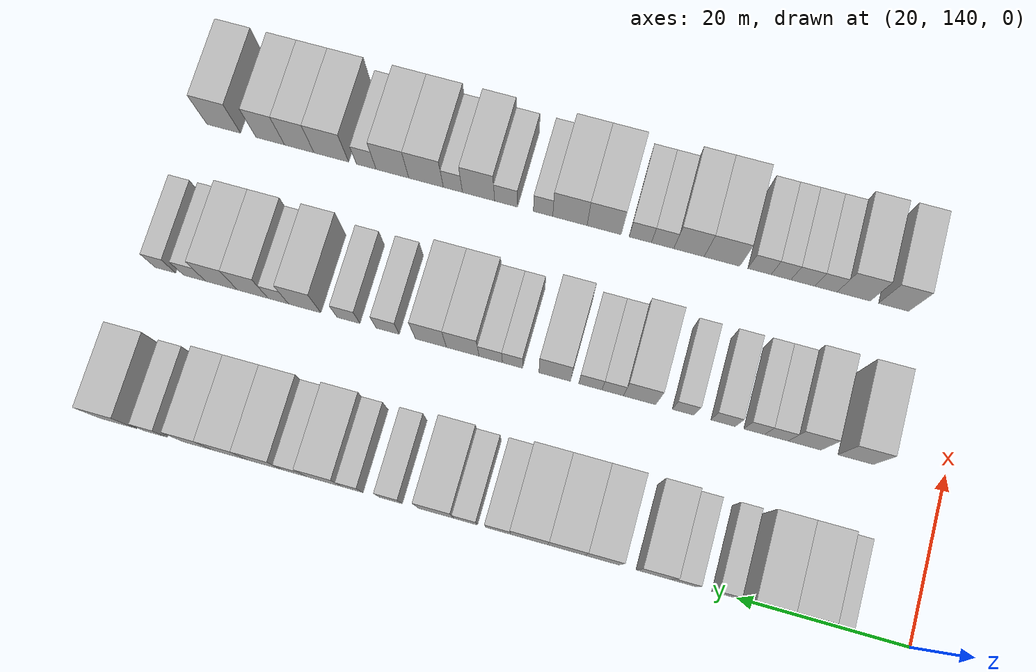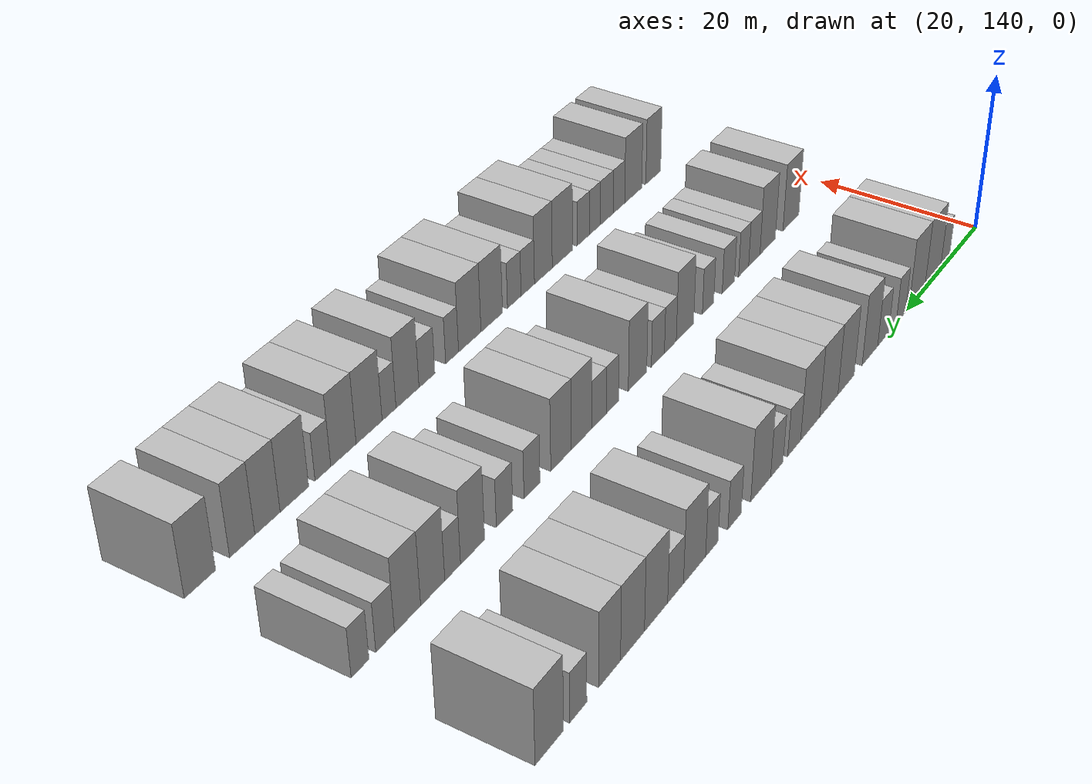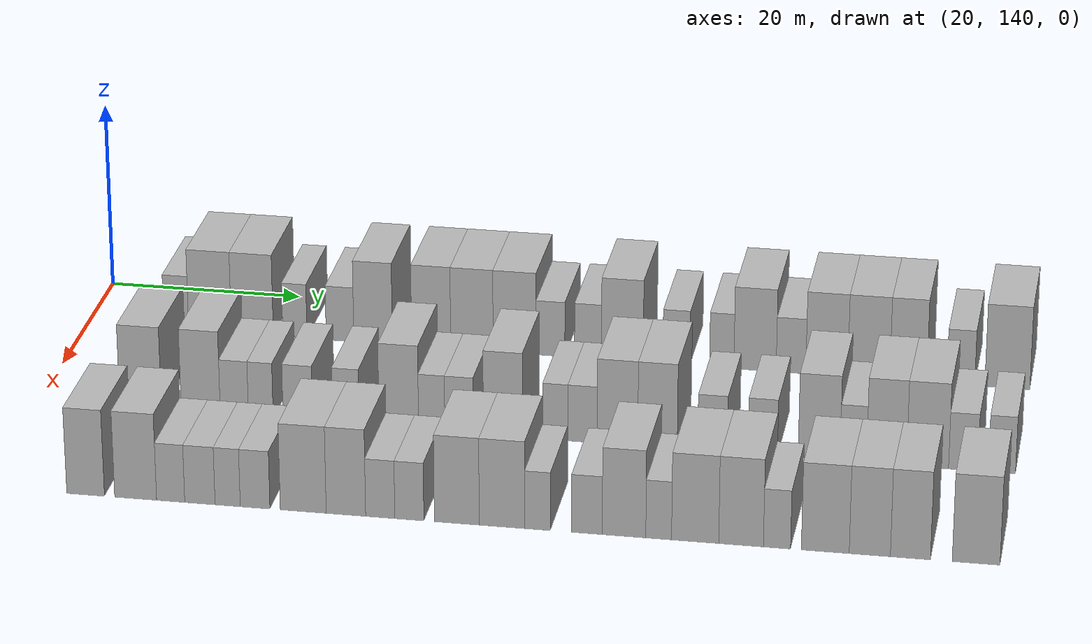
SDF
<sdf version="1.6">
 <world name="default">
  <model name="building_91">
   <static>1</static>
   <pose>25.0000 149.2696 0 0.000000 0.000000 0.000000</pose>
   <link name="link">
    <pose>0 0 3.00 0 0 0</pose>
    <collision name="collision"><geometry><box><size>10.0000 2.5882 6.0000</size></box></geometry></collision>
    <visual name="visual">
     <cast_shadows>0</cast_shadows>
     <geometry><box><size>10.0000 2.5882 6.0000</size></box></geometry>
     <material>
      <script>
       <uri>model://HANNAS_wall/materials/scripts</uri>
       <uri>model://HANNAS_wall/materials/textures</uri>
       <name>vrc/HANNAS_wall</name>
      </script>
     </material>
    </visual>
   </link>
  </model>
  <model name="building_92">
   <static>1</static>
   <pose>25.0000 152.8107 0 0.000000 0.000000 0.000000</pose>
   <link name="link">
    <pose>0 0 4.50 0 0 0</pose>
    <collision name="collision"><geometry><box><size>10.0000 4.4940 9.0000</size></box></geometry></collision>
    <visual name="visual">
     <cast_shadows>0</cast_shadows>
     <geometry><box><size>10.0000 4.4940 9.0000</size></box></geometry>
     <material>
      <script>
       <uri>model://HANNAS_wall/materials/scripts</uri>
       <uri>model://HANNAS_wall/materials/textures</uri>
       <name>vrc/HANNAS_wall</name>
      </script>
     </material>
    </visual>
   </link>
  </model>
  <model name="building_93">
   <static>1</static>
   <pose>25.0000 157.2499 0 0.000000 0.000000 0.000000</pose>
   <link name="link">
    <pose>0 0 4.50 0 0 0</pose>
    <collision name="collision"><geometry><box><size>10.0000 4.3843 9.0000</size></box></geometry></collision>
    <visual name="visual">
     <cast_shadows>0</cast_shadows>
     <geometry><box><size>10.0000 4.3843 9.0000</size></box></geometry>
     <material>
      <script>
       <uri>model://HANNAS_wall/materials/scripts</uri>
       <uri>model://HANNAS_wall/materials/textures</uri>
       <name>vrc/HANNAS_wall</name>
      </script>
     </material>
    </visual>
   </link>
  </model>
  <model name="building_94">
   <static>1</static>
   <pose>25.0000 161.7013 0 0.000000 0.000000 0.000000</pose>
   <link name="link">
    <pose>0 0 3.00 0 0 0</pose>
    <collision name="collision"><geometry><box><size>10.0000 2.5185 6.0000</size></box></geometry></collision>
    <visual name="visual">
     <cast_shadows>0</cast_shadows>
     <geometry><box><size>10.0000 2.5185 6.0000</size></box></geometry>
     <material>
      <script>
       <uri>model://HANNAS_wall/materials/scripts</uri>
       <uri>model://HANNAS_wall/materials/textures</uri>
       <name>vrc/HANNAS_wall</name>
      </script>
     </material>
    </visual>
   </link>
  </model>
  <model name="building_95">
   <static>1</static>
   <pose>25.0000 166.3996 0 0.000000 0.000000 0.000000</pose>
   <link name="link">
    <pose>0 0 3.00 0 0 0</pose>
    <collision name="collision"><geometry><box><size>10.0000 2.8781 6.0000</size></box></geometry></collision>
    <visual name="visual">
     <cast_shadows>0</cast_shadows>
     <geometry><box><size>10.0000 2.8781 6.0000</size></box></geometry>
     <material>
      <script>
       <uri>model://HANNAS_wall/materials/scripts</uri>
       <uri>model://HANNAS_wall/materials/textures</uri>
       <name>vrc/HANNAS_wall</name>
      </script>
     </material>
    </visual>
   </link>
  </model>
  <model name="building_96">
   <static>1</static>
   <pose>25.0000 169.8393 0 0.000000 0.000000 0.000000</pose>
   <link name="link">
    <pose>0 0 4.50 0 0 0</pose>
    <collision name="collision"><geometry><box><size>10.0000 4.0014 9.0000</size></box></geometry></collision>
    <visual name="visual">
     <cast_shadows>0</cast_shadows>
     <geometry><box><size>10.0000 4.0014 9.0000</size></box></geometry>
     <material>
      <script>
       <uri>model://HANNAS_wall/materials/scripts</uri>
       <uri>model://HANNAS_wall/materials/textures</uri>
       <name>vrc/HANNAS_wall</name>
      </script>
     </material>
    </visual>
   </link>
  </model>
  <model name="building_97">
   <static>1</static>
   <pose>25.0000 175.8543 0 0.000000 0.000000 0.000000</pose>
   <link name="link">
    <pose>0 0 4.50 0 0 0</pose>
    <collision name="collision"><geometry><box><size>10.0000 4.0286 9.0000</size></box></geometry></collision>
    <visual name="visual">
     <cast_shadows>0</cast_shadows>
     <geometry><box><size>10.0000 4.0286 9.0000</size></box></geometry>
     <material>
      <script>
       <uri>model://HANNAS_wall/materials/scripts</uri>
       <uri>model://HANNAS_wall/materials/textures</uri>
       <name>vrc/HANNAS_wall</name>
      </script>
     </material>
    </visual>
   </link>
  </model>
  <model name="building_98">
   <static>1</static>
   <pose>25.0000 180.0557 0 0.000000 0.000000 0.000000</pose>
   <link name="link">
    <pose>0 0 4.50 0 0 0</pose>
    <collision name="collision"><geometry><box><size>10.0000 4.3743 9.0000</size></box></geometry></collision>
    <visual name="visual">
     <cast_shadows>0</cast_shadows>
     <geometry><box><size>10.0000 4.3743 9.0000</size></box></geometry>
     <material>
      <script>
       <uri>model://HANNAS_wall/materials/scripts</uri>
       <uri>model://HANNAS_wall/materials/textures</uri>
       <name>vrc/HANNAS_wall</name>
      </script>
     </material>
    </visual>
   </link>
  </model>
  <model name="building_99">
   <static>1</static>
   <pose>25.0000 184.4564 0 0.000000 0.000000 0.000000</pose>
   <link name="link">
    <pose>0 0 4.50 0 0 0</pose>
    <collision name="collision"><geometry><box><size>10.0000 4.4270 9.0000</size></box></geometry></collision>
    <visual name="visual">
     <cast_shadows>0</cast_shadows>
     <geometry><box><size>10.0000 4.4270 9.0000</size></box></geometry>
     <material>
      <script>
       <uri>model://HANNAS_wall/materials/scripts</uri>
       <uri>model://HANNAS_wall/materials/textures</uri>
       <name>vrc/HANNAS_wall</name>
      </script>
     </material>
    </visual>
   </link>
  </model>
  <model name="building_100">
   <static>1</static>
   <pose>25.0000 188.1384 0 0.000000 0.000000 0.000000</pose>
   <link name="link">
    <pose>0 0 3.00 0 0 0</pose>
    <collision name="collision"><geometry><box><size>10.0000 2.9370 6.0000</size></box></geometry></collision>
    <visual name="visual">
     <cast_shadows>0</cast_shadows>
     <geometry><box><size>10.0000 2.9370 6.0000</size></box></geometry>
     <material>
      <script>
       <uri>model://HANNAS_wall/materials/scripts</uri>
       <uri>model://HANNAS_wall/materials/textures</uri>
       <name>vrc/HANNAS_wall</name>
      </script>
     </material>
    </visual>
   </link>
  </model>
  <model name="building_101">
   <static>1</static>
   <pose>25.0000 191.9836 0 0.000000 0.000000 0.000000</pose>
   <link name="link">
    <pose>0 0 3.00 0 0 0</pose>
    <collision name="collision"><geometry><box><size>10.0000 2.7534 6.0000</size></box></geometry></collision>
    <visual name="visual">
     <cast_shadows>0</cast_shadows>
     <geometry><box><size>10.0000 2.7534 6.0000</size></box></geometry>
     <material>
      <script>
       <uri>model://HANNAS_wall/materials/scripts</uri>
       <uri>model://HANNAS_wall/materials/textures</uri>
       <name>vrc/HANNAS_wall</name>
      </script>
     </material>
    </visual>
   </link>
  </model>
  <model name="building_102">
   <static>1</static>
   <pose>25.0000 195.4901 0 0.000000 0.000000 0.000000</pose>
   <link name="link">
    <pose>0 0 4.50 0 0 0</pose>
    <collision name="collision"><geometry><box><size>10.0000 4.2597 9.0000</size></box></geometry></collision>
    <visual name="visual">
     <cast_shadows>0</cast_shadows>
     <geometry><box><size>10.0000 4.2597 9.0000</size></box></geometry>
     <material>
      <script>
       <uri>model://HANNAS_wall/materials/scripts</uri>
       <uri>model://HANNAS_wall/materials/textures</uri>
       <name>vrc/HANNAS_wall</name>
      </script>
     </material>
    </visual>
   </link>
  </model>
  <model name="building_103">
   <static>1</static>
   <pose>25.0000 200.9903 0 0.000000 0.000000 0.000000</pose>
   <link name="link">
    <pose>0 0 3.00 0 0 0</pose>
    <collision name="collision"><geometry><box><size>10.0000 2.7407 6.0000</size></box></geometry></collision>
    <visual name="visual">
     <cast_shadows>0</cast_shadows>
     <geometry><box><size>10.0000 2.7407 6.0000</size></box></geometry>
     <material>
      <script>
       <uri>model://HANNAS_wall/materials/scripts</uri>
       <uri>model://HANNAS_wall/materials/textures</uri>
       <name>vrc/HANNAS_wall</name>
      </script>
     </material>
    </visual>
   </link>
  </model>
  <model name="building_104">
   <static>1</static>
   <pose>25.0000 205.5927 0 0.000000 0.000000 0.000000</pose>
   <link name="link">
    <pose>0 0 3.00 0 0 0</pose>
    <collision name="collision"><geometry><box><size>10.0000 2.4640 6.0000</size></box></geometry></collision>
    <visual name="visual">
     <cast_shadows>0</cast_shadows>
     <geometry><box><size>10.0000 2.4640 6.0000</size></box></geometry>
     <material>
      <script>
       <uri>model://HANNAS_wall/materials/scripts</uri>
       <uri>model://HANNAS_wall/materials/textures</uri>
       <name>vrc/HANNAS_wall</name>
      </script>
     </material>
    </visual>
   </link>
  </model>
  <model name="building_105">
   <static>1</static>
   <pose>25.0000 208.9615 0 0.000000 0.000000 0.000000</pose>
   <link name="link">
    <pose>0 0 4.50 0 0 0</pose>
    <collision name="collision"><geometry><box><size>10.0000 4.2735 9.0000</size></box></geometry></collision>
    <visual name="visual">
     <cast_shadows>0</cast_shadows>
     <geometry><box><size>10.0000 4.2735 9.0000</size></box></geometry>
     <material>
      <script>
       <uri>model://HANNAS_wall/materials/scripts</uri>
       <uri>model://HANNAS_wall/materials/textures</uri>
       <name>vrc/HANNAS_wall</name>
      </script>
     </material>
    </visual>
   </link>
  </model>
  <model name="building_106">
   <static>1</static>
   <pose>25.0000 212.5912 0 0.000000 0.000000 0.000000</pose>
   <link name="link">
    <pose>0 0 3.00 0 0 0</pose>
    <collision name="collision"><geometry><box><size>10.0000 2.9860 6.0000</size></box></geometry></collision>
    <visual name="visual">
     <cast_shadows>0</cast_shadows>
     <geometry><box><size>10.0000 2.9860 6.0000</size></box></geometry>
     <material>
      <script>
       <uri>model://HANNAS_wall/materials/scripts</uri>
       <uri>model://HANNAS_wall/materials/textures</uri>
       <name>vrc/HANNAS_wall</name>
      </script>
     </material>
    </visual>
   </link>
  </model>
  <model name="building_107">
   <static>1</static>
   <pose>25.0000 216.1965 0 0.000000 0.000000 0.000000</pose>
   <link name="link">
    <pose>0 0 4.50 0 0 0</pose>
    <collision name="collision"><geometry><box><size>10.0000 4.2246 9.0000</size></box></geometry></collision>
    <visual name="visual">
     <cast_shadows>0</cast_shadows>
     <geometry><box><size>10.0000 4.2246 9.0000</size></box></geometry>
     <material>
      <script>
       <uri>model://HANNAS_wall/materials/scripts</uri>
       <uri>model://HANNAS_wall/materials/textures</uri>
       <name>vrc/HANNAS_wall</name>
      </script>
     </material>
    </visual>
   </link>
  </model>
  <model name="building_108">
   <static>1</static>
   <pose>25.0000 220.4183 0 0.000000 0.000000 0.000000</pose>
   <link name="link">
    <pose>0 0 4.50 0 0 0</pose>
    <collision name="collision"><geometry><box><size>10.0000 4.2189 9.0000</size></box></geometry></collision>
    <visual name="visual">
     <cast_shadows>0</cast_shadows>
     <geometry><box><size>10.0000 4.2189 9.0000</size></box></geometry>
     <material>
      <script>
       <uri>model://HANNAS_wall/materials/scripts</uri>
       <uri>model://HANNAS_wall/materials/textures</uri>
       <name>vrc/HANNAS_wall</name>
      </script>
     </material>
    </visual>
   </link>
  </model>
  <model name="building_109">
   <static>1</static>
   <pose>25.0000 224.3760 0 0.000000 0.000000 0.000000</pose>
   <link name="link">
    <pose>0 0 4.50 0 0 0</pose>
    <collision name="collision"><geometry><box><size>10.0000 3.6966 9.0000</size></box></geometry></collision>
    <visual name="visual">
     <cast_shadows>0</cast_shadows>
     <geometry><box><size>10.0000 3.6966 9.0000</size></box></geometry>
     <material>
      <script>
       <uri>model://HANNAS_wall/materials/scripts</uri>
       <uri>model://HANNAS_wall/materials/textures</uri>
       <name>vrc/HANNAS_wall</name>
      </script>
     </material>
    </visual>
   </link>
  </model>
  <model name="building_110">
   <static>1</static>
   <pose>25.0000 229.6182 0 0.000000 0.000000 0.000000</pose>
   <link name="link">
    <pose>0 0 3.00 0 0 0</pose>
    <collision name="collision"><geometry><box><size>10.0000 2.7877 6.0000</size></box></geometry></collision>
    <visual name="visual">
     <cast_shadows>0</cast_shadows>
     <geometry><box><size>10.0000 2.7877 6.0000</size></box></geometry>
     <material>
      <script>
       <uri>model://HANNAS_wall/materials/scripts</uri>
       <uri>model://HANNAS_wall/materials/textures</uri>
       <name>vrc/HANNAS_wall</name>
      </script>
     </material>
    </visual>
   </link>
  </model>
  <model name="building_111">
   <static>1</static>
   <pose>25.0000 234.2523 0 0.000000 0.000000 0.000000</pose>
   <link name="link">
    <pose>0 0 4.50 0 0 0</pose>
    <collision name="collision"><geometry><box><size>10.0000 4.4805 9.0000</size></box></geometry></collision>
    <visual name="visual">
     <cast_shadows>0</cast_shadows>
     <geometry><box><size>10.0000 4.4805 9.0000</size></box></geometry>
     <material>
      <script>
       <uri>model://HANNAS_wall/materials/scripts</uri>
       <uri>model://HANNAS_wall/materials/textures</uri>
       <name>vrc/HANNAS_wall</name>
      </script>
     </material>
    </visual>
   </link>
  </model>
  <model name="building_196">
   <static>1</static>
   <pose>44.0000 150.3736 0 0.000000 0.000000 0.000000</pose>
   <link name="link">
    <pose>0 0 4.50 0 0 0</pose>
    <collision name="collision"><geometry><box><size>10.0000 4.2187 9.0000</size></box></geometry></collision>
    <visual name="visual">
     <cast_shadows>0</cast_shadows>
     <geometry><box><size>10.0000 4.2187 9.0000</size></box></geometry>
     <material>
      <script>
       <uri>model://HANNAS_wall/materials/scripts</uri>
       <uri>model://HANNAS_wall/materials/textures</uri>
       <name>vrc/HANNAS_wall</name>
      </script>
     </material>
    </visual>
   </link>
  </model>
  <model name="building_197">
   <static>1</static>
   <pose>44.0000 156.4511 0 0.000000 0.000000 0.000000</pose>
   <link name="link">
    <pose>0 0 4.50 0 0 0</pose>
    <collision name="collision"><geometry><box><size>10.0000 3.9363 9.0000</size></box></geometry></collision>
    <visual name="visual">
     <cast_shadows>0</cast_shadows>
     <geometry><box><size>10.0000 3.9363 9.0000</size></box></geometry>
     <material>
      <script>
       <uri>model://HANNAS_wall/materials/scripts</uri>
       <uri>model://HANNAS_wall/materials/textures</uri>
       <name>vrc/HANNAS_wall</name>
      </script>
     </material>
    </visual>
   </link>
  </model>
  <model name="building_198">
   <static>1</static>
   <pose>44.0000 159.8367 0 0.000000 0.000000 0.000000</pose>
   <link name="link">
    <pose>0 0 3.00 0 0 0</pose>
    <collision name="collision"><geometry><box><size>10.0000 2.8349 6.0000</size></box></geometry></collision>
    <visual name="visual">
     <cast_shadows>0</cast_shadows>
     <geometry><box><size>10.0000 2.8349 6.0000</size></box></geometry>
     <material>
      <script>
       <uri>model://HANNAS_wall/materials/scripts</uri>
       <uri>model://HANNAS_wall/materials/textures</uri>
       <name>vrc/HANNAS_wall</name>
      </script>
     </material>
    </visual>
   </link>
  </model>
  <model name="building_199">
   <static>1</static>
   <pose>44.0000 162.4955 0 0.000000 0.000000 0.000000</pose>
   <link name="link">
    <pose>0 0 3.00 0 0 0</pose>
    <collision name="collision"><geometry><box><size>10.0000 2.4826 6.0000</size></box></geometry></collision>
    <visual name="visual">
     <cast_shadows>0</cast_shadows>
     <geometry><box><size>10.0000 2.4826 6.0000</size></box></geometry>
     <material>
      <script>
       <uri>model://HANNAS_wall/materials/scripts</uri>
       <uri>model://HANNAS_wall/materials/textures</uri>
       <name>vrc/HANNAS_wall</name>
      </script>
     </material>
    </visual>
   </link>
  </model>
  <model name="building_200">
   <static>1</static>
   <pose>44.0000 166.2134 0 0.000000 0.000000 0.000000</pose>
   <link name="link">
    <pose>0 0 3.00 0 0 0</pose>
    <collision name="collision"><geometry><box><size>10.0000 2.9533 6.0000</size></box></geometry></collision>
    <visual name="visual">
     <cast_shadows>0</cast_shadows>
     <geometry><box><size>10.0000 2.9533 6.0000</size></box></geometry>
     <material>
      <script>
       <uri>model://HANNAS_wall/materials/scripts</uri>
       <uri>model://HANNAS_wall/materials/textures</uri>
       <name>vrc/HANNAS_wall</name>
      </script>
     </material>
    </visual>
   </link>
  </model>
  <model name="building_201">
   <static>1</static>
   <pose>44.0000 171.0141 0 0.000000 0.000000 0.000000</pose>
   <link name="link">
    <pose>0 0 3.00 0 0 0</pose>
    <collision name="collision"><geometry><box><size>10.0000 2.6481 6.0000</size></box></geometry></collision>
    <visual name="visual">
     <cast_shadows>0</cast_shadows>
     <geometry><box><size>10.0000 2.6481 6.0000</size></box></geometry>
     <material>
      <script>
       <uri>model://HANNAS_wall/materials/scripts</uri>
       <uri>model://HANNAS_wall/materials/textures</uri>
       <name>vrc/HANNAS_wall</name>
      </script>
     </material>
    </visual>
   </link>
  </model>
  <model name="building_202">
   <static>1</static>
   <pose>44.0000 176.3011 0 0.000000 0.000000 0.000000</pose>
   <link name="link">
    <pose>0 0 4.50 0 0 0</pose>
    <collision name="collision"><geometry><box><size>10.0000 3.9258 9.0000</size></box></geometry></collision>
    <visual name="visual">
     <cast_shadows>0</cast_shadows>
     <geometry><box><size>10.0000 3.9258 9.0000</size></box></geometry>
     <material>
      <script>
       <uri>model://HANNAS_wall/materials/scripts</uri>
       <uri>model://HANNAS_wall/materials/textures</uri>
       <name>vrc/HANNAS_wall</name>
      </script>
     </material>
    </visual>
   </link>
  </model>
  <model name="building_203">
   <static>1</static>
   <pose>44.0000 179.5691 0 0.000000 0.000000 0.000000</pose>
   <link name="link">
    <pose>0 0 3.00 0 0 0</pose>
    <collision name="collision"><geometry><box><size>10.0000 2.6103 6.0000</size></box></geometry></collision>
    <visual name="visual">
     <cast_shadows>0</cast_shadows>
     <geometry><box><size>10.0000 2.6103 6.0000</size></box></geometry>
     <material>
      <script>
       <uri>model://HANNAS_wall/materials/scripts</uri>
       <uri>model://HANNAS_wall/materials/textures</uri>
       <name>vrc/HANNAS_wall</name>
      </script>
     </material>
    </visual>
   </link>
  </model>
  <model name="building_204">
   <static>1</static>
   <pose>44.0000 182.2831 0 0.000000 0.000000 0.000000</pose>
   <link name="link">
    <pose>0 0 3.00 0 0 0</pose>
    <collision name="collision"><geometry><box><size>10.0000 2.8177 6.0000</size></box></geometry></collision>
    <visual name="visual">
     <cast_shadows>0</cast_shadows>
     <geometry><box><size>10.0000 2.8177 6.0000</size></box></geometry>
     <material>
      <script>
       <uri>model://HANNAS_wall/materials/scripts</uri>
       <uri>model://HANNAS_wall/materials/textures</uri>
       <name>vrc/HANNAS_wall</name>
      </script>
     </material>
    </visual>
   </link>
  </model>
  <model name="building_205">
   <static>1</static>
   <pose>44.0000 186.6218 0 0.000000 0.000000 0.000000</pose>
   <link name="link">
    <pose>0 0 4.50 0 0 0</pose>
    <collision name="collision"><geometry><box><size>10.0000 3.8597 9.0000</size></box></geometry></collision>
    <visual name="visual">
     <cast_shadows>0</cast_shadows>
     <geometry><box><size>10.0000 3.8597 9.0000</size></box></geometry>
     <material>
      <script>
       <uri>model://HANNAS_wall/materials/scripts</uri>
       <uri>model://HANNAS_wall/materials/textures</uri>
       <name>vrc/HANNAS_wall</name>
      </script>
     </material>
    </visual>
   </link>
  </model>
  <model name="building_206">
   <static>1</static>
   <pose>44.0000 191.7839 0 0.000000 0.000000 0.000000</pose>
   <link name="link">
    <pose>0 0 3.00 0 0 0</pose>
    <collision name="collision"><geometry><box><size>10.0000 2.4646 6.0000</size></box></geometry></collision>
    <visual name="visual">
     <cast_shadows>0</cast_shadows>
     <geometry><box><size>10.0000 2.4646 6.0000</size></box></geometry>
     <material>
      <script>
       <uri>model://HANNAS_wall/materials/scripts</uri>
       <uri>model://HANNAS_wall/materials/textures</uri>
       <name>vrc/HANNAS_wall</name>
      </script>
     </material>
    </visual>
   </link>
  </model>
  <model name="building_207">
   <static>1</static>
   <pose>44.0000 194.4527 0 0.000000 0.000000 0.000000</pose>
   <link name="link">
    <pose>0 0 3.00 0 0 0</pose>
    <collision name="collision"><geometry><box><size>10.0000 2.8730 6.0000</size></box></geometry></collision>
    <visual name="visual">
     <cast_shadows>0</cast_shadows>
     <geometry><box><size>10.0000 2.8730 6.0000</size></box></geometry>
     <material>
      <script>
       <uri>model://HANNAS_wall/materials/scripts</uri>
       <uri>model://HANNAS_wall/materials/textures</uri>
       <name>vrc/HANNAS_wall</name>
      </script>
     </material>
    </visual>
   </link>
  </model>
  <model name="building_208">
   <static>1</static>
   <pose>44.0000 197.8874 0 0.000000 0.000000 0.000000</pose>
   <link name="link">
    <pose>0 0 4.50 0 0 0</pose>
    <collision name="collision"><geometry><box><size>10.0000 3.9965 9.0000</size></box></geometry></collision>
    <visual name="visual">
     <cast_shadows>0</cast_shadows>
     <geometry><box><size>10.0000 3.9965 9.0000</size></box></geometry>
     <material>
      <script>
       <uri>model://HANNAS_wall/materials/scripts</uri>
       <uri>model://HANNAS_wall/materials/textures</uri>
       <name>vrc/HANNAS_wall</name>
      </script>
     </material>
    </visual>
   </link>
  </model>
  <model name="building_209">
   <static>1</static>
   <pose>44.0000 201.8138 0 0.000000 0.000000 0.000000</pose>
   <link name="link">
    <pose>0 0 4.50 0 0 0</pose>
    <collision name="collision"><geometry><box><size>10.0000 3.8562 9.0000</size></box></geometry></collision>
    <visual name="visual">
     <cast_shadows>0</cast_shadows>
     <geometry><box><size>10.0000 3.8562 9.0000</size></box></geometry>
     <material>
      <script>
       <uri>model://HANNAS_wall/materials/scripts</uri>
       <uri>model://HANNAS_wall/materials/textures</uri>
       <name>vrc/HANNAS_wall</name>
      </script>
     </material>
    </visual>
   </link>
  </model>
  <model name="building_210">
   <static>1</static>
   <pose>44.0000 207.1865 0 0.000000 0.000000 0.000000</pose>
   <link name="link">
    <pose>0 0 3.00 0 0 0</pose>
    <collision name="collision"><geometry><box><size>10.0000 2.8893 6.0000</size></box></geometry></collision>
    <visual name="visual">
     <cast_shadows>0</cast_shadows>
     <geometry><box><size>10.0000 2.8893 6.0000</size></box></geometry>
     <material>
      <script>
       <uri>model://HANNAS_wall/materials/scripts</uri>
       <uri>model://HANNAS_wall/materials/textures</uri>
       <name>vrc/HANNAS_wall</name>
      </script>
     </material>
    </visual>
   </link>
  </model>
  <model name="building_211">
   <static>1</static>
   <pose>44.0000 212.0646 0 0.000000 0.000000 0.000000</pose>
   <link name="link">
    <pose>0 0 3.00 0 0 0</pose>
    <collision name="collision"><geometry><box><size>10.0000 2.8669 6.0000</size></box></geometry></collision>
    <visual name="visual">
     <cast_shadows>0</cast_shadows>
     <geometry><box><size>10.0000 2.8669 6.0000</size></box></geometry>
     <material>
      <script>
       <uri>model://HANNAS_wall/materials/scripts</uri>
       <uri>model://HANNAS_wall/materials/textures</uri>
       <name>vrc/HANNAS_wall</name>
      </script>
     </material>
    </visual>
   </link>
  </model>
  <model name="building_212">
   <static>1</static>
   <pose>44.0000 217.5213 0 0.000000 0.000000 0.000000</pose>
   <link name="link">
    <pose>0 0 4.50 0 0 0</pose>
    <collision name="collision"><geometry><box><size>10.0000 4.0465 9.0000</size></box></geometry></collision>
    <visual name="visual">
     <cast_shadows>0</cast_shadows>
     <geometry><box><size>10.0000 4.0465 9.0000</size></box></geometry>
     <material>
      <script>
       <uri>model://HANNAS_wall/materials/scripts</uri>
       <uri>model://HANNAS_wall/materials/textures</uri>
       <name>vrc/HANNAS_wall</name>
      </script>
     </material>
    </visual>
   </link>
  </model>
  <model name="building_213">
   <static>1</static>
   <pose>44.0000 220.8256 0 0.000000 0.000000 0.000000</pose>
   <link name="link">
    <pose>0 0 3.00 0 0 0</pose>
    <collision name="collision"><geometry><box><size>10.0000 2.5621 6.0000</size></box></geometry></collision>
    <visual name="visual">
     <cast_shadows>0</cast_shadows>
     <geometry><box><size>10.0000 2.5621 6.0000</size></box></geometry>
     <material>
      <script>
       <uri>model://HANNAS_wall/materials/scripts</uri>
       <uri>model://HANNAS_wall/materials/textures</uri>
       <name>vrc/HANNAS_wall</name>
      </script>
     </material>
    </visual>
   </link>
  </model>
  <model name="building_214">
   <static>1</static>
   <pose>44.0000 224.0326 0 0.000000 0.000000 0.000000</pose>
   <link name="link">
    <pose>0 0 4.50 0 0 0</pose>
    <collision name="collision"><geometry><box><size>10.0000 3.8520 9.0000</size></box></geometry></collision>
    <visual name="visual">
     <cast_shadows>0</cast_shadows>
     <geometry><box><size>10.0000 3.8520 9.0000</size></box></geometry>
     <material>
      <script>
       <uri>model://HANNAS_wall/materials/scripts</uri>
       <uri>model://HANNAS_wall/materials/textures</uri>
       <name>vrc/HANNAS_wall</name>
      </script>
     </material>
    </visual>
   </link>
  </model>
  <model name="building_215">
   <static>1</static>
   <pose>44.0000 227.9743 0 0.000000 0.000000 0.000000</pose>
   <link name="link">
    <pose>0 0 4.50 0 0 0</pose>
    <collision name="collision"><geometry><box><size>10.0000 4.0314 9.0000</size></box></geometry></collision>
    <visual name="visual">
     <cast_shadows>0</cast_shadows>
     <geometry><box><size>10.0000 4.0314 9.0000</size></box></geometry>
     <material>
      <script>
       <uri>model://HANNAS_wall/materials/scripts</uri>
       <uri>model://HANNAS_wall/materials/textures</uri>
       <name>vrc/HANNAS_wall</name>
      </script>
     </material>
    </visual>
   </link>
  </model>
  <model name="building_216">
   <static>1</static>
   <pose>44.0000 231.3919 0 0.000000 0.000000 0.000000</pose>
   <link name="link">
    <pose>0 0 3.00 0 0 0</pose>
    <collision name="collision"><geometry><box><size>10.0000 2.8037 6.0000</size></box></geometry></collision>
    <visual name="visual">
     <cast_shadows>0</cast_shadows>
     <geometry><box><size>10.0000 2.8037 6.0000</size></box></geometry>
     <material>
      <script>
       <uri>model://HANNAS_wall/materials/scripts</uri>
       <uri>model://HANNAS_wall/materials/textures</uri>
       <name>vrc/HANNAS_wall</name>
      </script>
     </material>
    </visual>
   </link>
  </model>
  <model name="building_217">
   <static>1</static>
   <pose>44.0000 235.0934 0 0.000000 0.000000 0.000000</pose>
   <link name="link">
    <pose>0 0 3.00 0 0 0</pose>
    <collision name="collision"><geometry><box><size>10.0000 2.5994 6.0000</size></box></geometry></collision>
    <visual name="visual">
     <cast_shadows>0</cast_shadows>
     <geometry><box><size>10.0000 2.5994 6.0000</size></box></geometry>
     <material>
      <script>
       <uri>model://HANNAS_wall/materials/scripts</uri>
       <uri>model://HANNAS_wall/materials/textures</uri>
       <name>vrc/HANNAS_wall</name>
      </script>
     </material>
    </visual>
   </link>
  </model>
  <model name="building_306">
   <static>1</static>
   <pose>63.0000 149.8638 0 0.000000 0.000000 0.000000</pose>
   <link name="link">
    <pose>0 0 4.50 0 0 0</pose>
    <collision name="collision"><geometry><box><size>10.0000 3.6720 9.0000</size></box></geometry></collision>
    <visual name="visual">
     <cast_shadows>0</cast_shadows>
     <geometry><box><size>10.0000 3.6720 9.0000</size></box></geometry>
     <material>
      <script>
       <uri>model://HANNAS_wall/materials/scripts</uri>
       <uri>model://HANNAS_wall/materials/textures</uri>
       <name>vrc/HANNAS_wall</name>
      </script>
     </material>
    </visual>
   </link>
  </model>
  <model name="building_307">
   <static>1</static>
   <pose>63.0000 154.7358 0 0.000000 0.000000 0.000000</pose>
   <link name="link">
    <pose>0 0 4.50 0 0 0</pose>
    <collision name="collision"><geometry><box><size>10.0000 4.0720 9.0000</size></box></geometry></collision>
    <visual name="visual">
     <cast_shadows>0</cast_shadows>
     <geometry><box><size>10.0000 4.0720 9.0000</size></box></geometry>
     <material>
      <script>
       <uri>model://HANNAS_wall/materials/scripts</uri>
       <uri>model://HANNAS_wall/materials/textures</uri>
       <name>vrc/HANNAS_wall</name>
      </script>
     </material>
    </visual>
   </link>
  </model>
  <model name="building_308">
   <static>1</static>
   <pose>63.0000 158.1371 0 0.000000 0.000000 0.000000</pose>
   <link name="link">
    <pose>0 0 3.00 0 0 0</pose>
    <collision name="collision"><geometry><box><size>10.0000 2.7305 6.0000</size></box></geometry></collision>
    <visual name="visual">
     <cast_shadows>0</cast_shadows>
     <geometry><box><size>10.0000 2.7305 6.0000</size></box></geometry>
     <material>
      <script>
       <uri>model://HANNAS_wall/materials/scripts</uri>
       <uri>model://HANNAS_wall/materials/textures</uri>
       <name>vrc/HANNAS_wall</name>
      </script>
     </material>
    </visual>
   </link>
  </model>
  <model name="building_309">
   <static>1</static>
   <pose>63.0000 160.9701 0 0.000000 0.000000 0.000000</pose>
   <link name="link">
    <pose>0 0 3.00 0 0 0</pose>
    <collision name="collision"><geometry><box><size>10.0000 2.9355 6.0000</size></box></geometry></collision>
    <visual name="visual">
     <cast_shadows>0</cast_shadows>
     <geometry><box><size>10.0000 2.9355 6.0000</size></box></geometry>
     <material>
      <script>
       <uri>model://HANNAS_wall/materials/scripts</uri>
       <uri>model://HANNAS_wall/materials/textures</uri>
       <name>vrc/HANNAS_wall</name>
      </script>
     </material>
    </visual>
   </link>
  </model>
  <model name="building_310">
   <static>1</static>
   <pose>63.0000 163.6546 0 0.000000 0.000000 0.000000</pose>
   <link name="link">
    <pose>0 0 3.00 0 0 0</pose>
    <collision name="collision"><geometry><box><size>10.0000 2.4336 6.0000</size></box></geometry></collision>
    <visual name="visual">
     <cast_shadows>0</cast_shadows>
     <geometry><box><size>10.0000 2.4336 6.0000</size></box></geometry>
     <material>
      <script>
       <uri>model://HANNAS_wall/materials/scripts</uri>
       <uri>model://HANNAS_wall/materials/textures</uri>
       <name>vrc/HANNAS_wall</name>
      </script>
     </material>
    </visual>
   </link>
  </model>
  <model name="building_311">
   <static>1</static>
   <pose>63.0000 166.3021 0 0.000000 0.000000 0.000000</pose>
   <link name="link">
    <pose>0 0 3.00 0 0 0</pose>
    <collision name="collision"><geometry><box><size>10.0000 2.8614 6.0000</size></box></geometry></collision>
    <visual name="visual">
     <cast_shadows>0</cast_shadows>
     <geometry><box><size>10.0000 2.8614 6.0000</size></box></geometry>
     <material>
      <script>
       <uri>model://HANNAS_wall/materials/scripts</uri>
       <uri>model://HANNAS_wall/materials/textures</uri>
       <name>vrc/HANNAS_wall</name>
      </script>
     </material>
    </visual>
   </link>
  </model>
  <model name="building_312">
   <static>1</static>
   <pose>63.0000 170.9390 0 0.000000 0.000000 0.000000</pose>
   <link name="link">
    <pose>0 0 4.50 0 0 0</pose>
    <collision name="collision"><geometry><box><size>10.0000 4.4124 9.0000</size></box></geometry></collision>
    <visual name="visual">
     <cast_shadows>0</cast_shadows>
     <geometry><box><size>10.0000 4.4124 9.0000</size></box></geometry>
     <material>
      <script>
       <uri>model://HANNAS_wall/materials/scripts</uri>
       <uri>model://HANNAS_wall/materials/textures</uri>
       <name>vrc/HANNAS_wall</name>
      </script>
     </material>
    </visual>
   </link>
  </model>
  <model name="building_313">
   <static>1</static>
   <pose>63.0000 175.0340 0 0.000000 0.000000 0.000000</pose>
   <link name="link">
    <pose>0 0 4.50 0 0 0</pose>
    <collision name="collision"><geometry><box><size>10.0000 3.7776 9.0000</size></box></geometry></collision>
    <visual name="visual">
     <cast_shadows>0</cast_shadows>
     <geometry><box><size>10.0000 3.7776 9.0000</size></box></geometry>
     <material>
      <script>
       <uri>model://HANNAS_wall/materials/scripts</uri>
       <uri>model://HANNAS_wall/materials/textures</uri>
       <name>vrc/HANNAS_wall</name>
      </script>
     </material>
    </visual>
   </link>
  </model>
  <model name="building_314">
   <static>1</static>
   <pose>63.0000 178.3155 0 0.000000 0.000000 0.000000</pose>
   <link name="link">
    <pose>0 0 3.00 0 0 0</pose>
    <collision name="collision"><geometry><box><size>10.0000 2.7853 6.0000</size></box></geometry></collision>
    <visual name="visual">
     <cast_shadows>0</cast_shadows>
     <geometry><box><size>10.0000 2.7853 6.0000</size></box></geometry>
     <material>
      <script>
       <uri>model://HANNAS_wall/materials/scripts</uri>
       <uri>model://HANNAS_wall/materials/textures</uri>
       <name>vrc/HANNAS_wall</name>
      </script>
     </material>
    </visual>
   </link>
  </model>
  <model name="building_315">
   <static>1</static>
   <pose>63.0000 181.0948 0 0.000000 0.000000 0.000000</pose>
   <link name="link">
    <pose>0 0 3.00 0 0 0</pose>
    <collision name="collision"><geometry><box><size>10.0000 2.7734 6.0000</size></box></geometry></collision>
    <visual name="visual">
     <cast_shadows>0</cast_shadows>
     <geometry><box><size>10.0000 2.7734 6.0000</size></box></geometry>
     <material>
      <script>
       <uri>model://HANNAS_wall/materials/scripts</uri>
       <uri>model://HANNAS_wall/materials/textures</uri>
       <name>vrc/HANNAS_wall</name>
      </script>
     </material>
    </visual>
   </link>
  </model>
  <model name="building_316">
   <static>1</static>
   <pose>63.0000 185.6135 0 0.000000 0.000000 0.000000</pose>
   <link name="link">
    <pose>0 0 4.50 0 0 0</pose>
    <collision name="collision"><geometry><box><size>10.0000 4.2639 9.0000</size></box></geometry></collision>
    <visual name="visual">
     <cast_shadows>0</cast_shadows>
     <geometry><box><size>10.0000 4.2639 9.0000</size></box></geometry>
     <material>
      <script>
       <uri>model://HANNAS_wall/materials/scripts</uri>
       <uri>model://HANNAS_wall/materials/textures</uri>
       <name>vrc/HANNAS_wall</name>
      </script>
     </material>
    </visual>
   </link>
  </model>
  <model name="building_317">
   <static>1</static>
   <pose>63.0000 189.9021 0 0.000000 0.000000 0.000000</pose>
   <link name="link">
    <pose>0 0 4.50 0 0 0</pose>
    <collision name="collision"><geometry><box><size>10.0000 4.3133 9.0000</size></box></geometry></collision>
    <visual name="visual">
     <cast_shadows>0</cast_shadows>
     <geometry><box><size>10.0000 4.3133 9.0000</size></box></geometry>
     <material>
      <script>
       <uri>model://HANNAS_wall/materials/scripts</uri>
       <uri>model://HANNAS_wall/materials/textures</uri>
       <name>vrc/HANNAS_wall</name>
      </script>
     </material>
    </visual>
   </link>
  </model>
  <model name="building_318">
   <static>1</static>
   <pose>63.0000 193.2691 0 0.000000 0.000000 0.000000</pose>
   <link name="link">
    <pose>0 0 3.00 0 0 0</pose>
    <collision name="collision"><geometry><box><size>10.0000 2.4207 6.0000</size></box></geometry></collision>
    <visual name="visual">
     <cast_shadows>0</cast_shadows>
     <geometry><box><size>10.0000 2.4207 6.0000</size></box></geometry>
     <material>
      <script>
       <uri>model://HANNAS_wall/materials/scripts</uri>
       <uri>model://HANNAS_wall/materials/textures</uri>
       <name>vrc/HANNAS_wall</name>
      </script>
     </material>
    </visual>
   </link>
  </model>
  <model name="building_319">
   <static>1</static>
   <pose>63.0000 197.9280 0 0.000000 0.000000 0.000000</pose>
   <link name="link">
    <pose>0 0 3.00 0 0 0</pose>
    <collision name="collision"><geometry><box><size>10.0000 2.8972 6.0000</size></box></geometry></collision>
    <visual name="visual">
     <cast_shadows>0</cast_shadows>
     <geometry><box><size>10.0000 2.8972 6.0000</size></box></geometry>
     <material>
      <script>
       <uri>model://HANNAS_wall/materials/scripts</uri>
       <uri>model://HANNAS_wall/materials/textures</uri>
       <name>vrc/HANNAS_wall</name>
      </script>
     </material>
    </visual>
   </link>
  </model>
  <model name="building_320">
   <static>1</static>
   <pose>63.0000 201.4205 0 0.000000 0.000000 0.000000</pose>
   <link name="link">
    <pose>0 0 4.50 0 0 0</pose>
    <collision name="collision"><geometry><box><size>10.0000 4.0877 9.0000</size></box></geometry></collision>
    <visual name="visual">
     <cast_shadows>0</cast_shadows>
     <geometry><box><size>10.0000 4.0877 9.0000</size></box></geometry>
     <material>
      <script>
       <uri>model://HANNAS_wall/materials/scripts</uri>
       <uri>model://HANNAS_wall/materials/textures</uri>
       <name>vrc/HANNAS_wall</name>
      </script>
     </material>
    </visual>
   </link>
  </model>
  <model name="building_321">
   <static>1</static>
   <pose>63.0000 204.6721 0 0.000000 0.000000 0.000000</pose>
   <link name="link">
    <pose>0 0 3.00 0 0 0</pose>
    <collision name="collision"><geometry><box><size>10.0000 2.4155 6.0000</size></box></geometry></collision>
    <visual name="visual">
     <cast_shadows>0</cast_shadows>
     <geometry><box><size>10.0000 2.4155 6.0000</size></box></geometry>
     <material>
      <script>
       <uri>model://HANNAS_wall/materials/scripts</uri>
       <uri>model://HANNAS_wall/materials/textures</uri>
       <name>vrc/HANNAS_wall</name>
      </script>
     </material>
    </visual>
   </link>
  </model>
  <model name="building_322">
   <static>1</static>
   <pose>63.0000 208.0851 0 0.000000 0.000000 0.000000</pose>
   <link name="link">
    <pose>0 0 4.50 0 0 0</pose>
    <collision name="collision"><geometry><box><size>10.0000 4.4106 9.0000</size></box></geometry></collision>
    <visual name="visual">
     <cast_shadows>0</cast_shadows>
     <geometry><box><size>10.0000 4.4106 9.0000</size></box></geometry>
     <material>
      <script>
       <uri>model://HANNAS_wall/materials/scripts</uri>
       <uri>model://HANNAS_wall/materials/textures</uri>
       <name>vrc/HANNAS_wall</name>
      </script>
     </material>
    </visual>
   </link>
  </model>
  <model name="building_323">
   <static>1</static>
   <pose>63.0000 212.3740 0 0.000000 0.000000 0.000000</pose>
   <link name="link">
    <pose>0 0 4.50 0 0 0</pose>
    <collision name="collision"><geometry><box><size>10.0000 4.1671 9.0000</size></box></geometry></collision>
    <visual name="visual">
     <cast_shadows>0</cast_shadows>
     <geometry><box><size>10.0000 4.1671 9.0000</size></box></geometry>
     <material>
      <script>
       <uri>model://HANNAS_wall/materials/scripts</uri>
       <uri>model://HANNAS_wall/materials/textures</uri>
       <name>vrc/HANNAS_wall</name>
      </script>
     </material>
    </visual>
   </link>
  </model>
  <model name="building_324">
   <static>1</static>
   <pose>63.0000 215.7207 0 0.000000 0.000000 0.000000</pose>
   <link name="link">
    <pose>0 0 3.00 0 0 0</pose>
    <collision name="collision"><geometry><box><size>10.0000 2.5263 6.0000</size></box></geometry></collision>
    <visual name="visual">
     <cast_shadows>0</cast_shadows>
     <geometry><box><size>10.0000 2.5263 6.0000</size></box></geometry>
     <material>
      <script>
       <uri>model://HANNAS_wall/materials/scripts</uri>
       <uri>model://HANNAS_wall/materials/textures</uri>
       <name>vrc/HANNAS_wall</name>
      </script>
     </material>
    </visual>
   </link>
  </model>
  <model name="building_325">
   <static>1</static>
   <pose>63.0000 220.2015 0 0.000000 0.000000 0.000000</pose>
   <link name="link">
    <pose>0 0 4.50 0 0 0</pose>
    <collision name="collision"><geometry><box><size>10.0000 4.4354 9.0000</size></box></geometry></collision>
    <visual name="visual">
     <cast_shadows>0</cast_shadows>
     <geometry><box><size>10.0000 4.4354 9.0000</size></box></geometry>
     <material>
      <script>
       <uri>model://HANNAS_wall/materials/scripts</uri>
       <uri>model://HANNAS_wall/materials/textures</uri>
       <name>vrc/HANNAS_wall</name>
      </script>
     </material>
    </visual>
   </link>
  </model>
  <model name="building_326">
   <static>1</static>
   <pose>63.0000 224.3224 0 0.000000 0.000000 0.000000</pose>
   <link name="link">
    <pose>0 0 4.50 0 0 0</pose>
    <collision name="collision"><geometry><box><size>10.0000 3.8064 9.0000</size></box></geometry></collision>
    <visual name="visual">
     <cast_shadows>0</cast_shadows>
     <geometry><box><size>10.0000 3.8064 9.0000</size></box></geometry>
     <material>
      <script>
       <uri>model://HANNAS_wall/materials/scripts</uri>
       <uri>model://HANNAS_wall/materials/textures</uri>
       <name>vrc/HANNAS_wall</name>
      </script>
     </material>
    </visual>
   </link>
  </model>
  <model name="building_327">
   <static>1</static>
   <pose>63.0000 228.0727 0 0.000000 0.000000 0.000000</pose>
   <link name="link">
    <pose>0 0 4.50 0 0 0</pose>
    <collision name="collision"><geometry><box><size>10.0000 3.6940 9.0000</size></box></geometry></collision>
    <visual name="visual">
     <cast_shadows>0</cast_shadows>
     <geometry><box><size>10.0000 3.6940 9.0000</size></box></geometry>
     <material>
      <script>
       <uri>model://HANNAS_wall/materials/scripts</uri>
       <uri>model://HANNAS_wall/materials/textures</uri>
       <name>vrc/HANNAS_wall</name>
      </script>
     </material>
    </visual>
   </link>
  </model>
  <model name="building_328">
   <static>1</static>
   <pose>63.0000 234.1127 0 0.000000 0.000000 0.000000</pose>
   <link name="link">
    <pose>0 0 4.50 0 0 0</pose>
    <collision name="collision"><geometry><box><size>10.0000 4.3859 9.0000</size></box></geometry></collision>
    <visual name="visual">
     <cast_shadows>0</cast_shadows>
     <geometry><box><size>10.0000 4.3859 9.0000</size></box></geometry>
     <material>
      <script>
       <uri>model://HANNAS_wall/materials/scripts</uri>
       <uri>model://HANNAS_wall/materials/textures</uri>
       <name>vrc/HANNAS_wall</name>
      </script>
     </material>
    </visual>
   </link>
  </model>
 </world>
</sdf>
